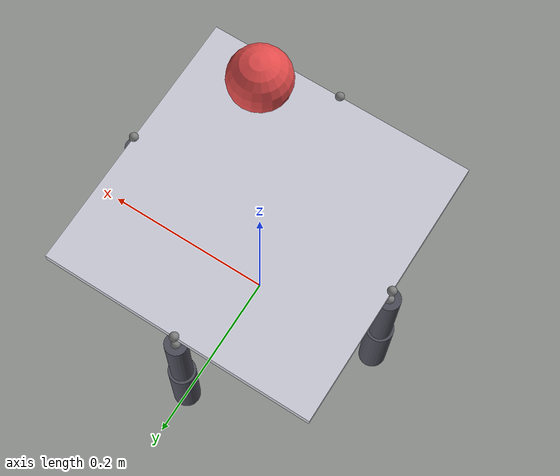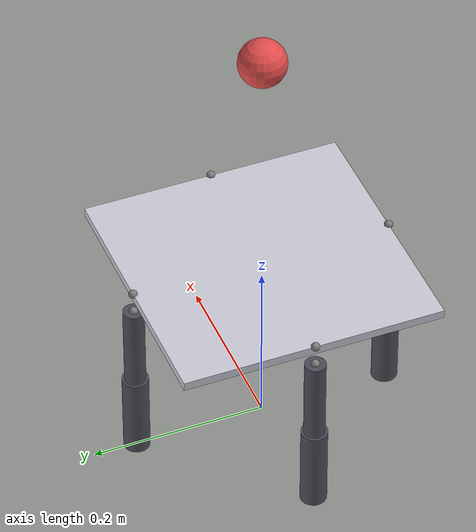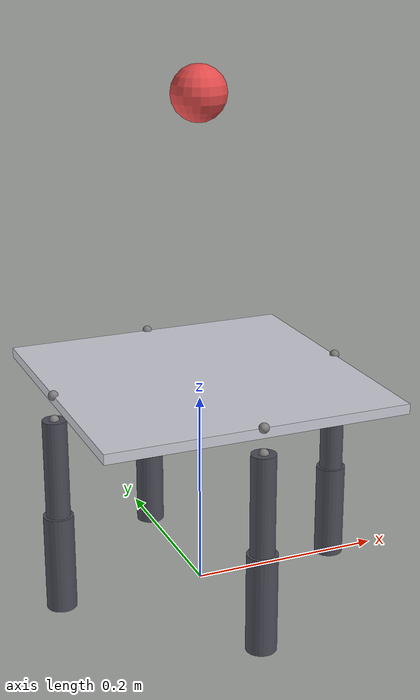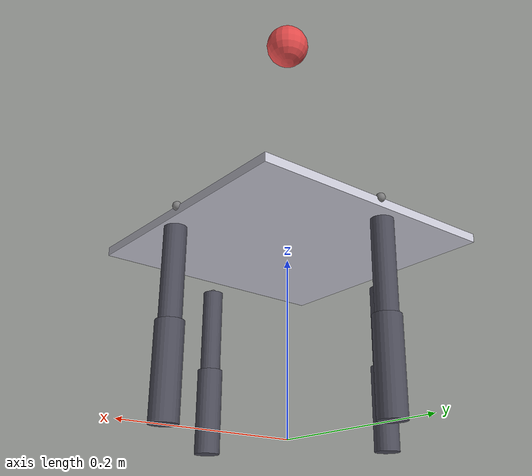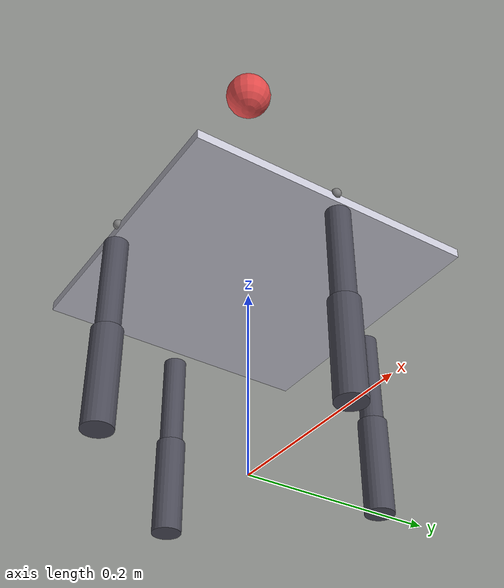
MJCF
<mujoco model="tilt_plate_4pillars_edges">
  <compiler angle="degree" inertiafromgeom="true"/>
  <option timestep="0.0001" gravity="0 0 -9.81" integrator="RK4"/>

  <default>
    <geom  condim="6" margin="0.001" solimp="0.9 0.95 0.001" solref="0.002 1"/>
    <default class="plate">
      <geom type="box" friction="0.8 0.003 0.001" solimp="0.99 0.99 0.001" solref="0.01 1.5" rgba="0.8 0.8 0.85 1"/>
    </default>
    <default class="ball">
      <geom type="sphere" friction="0.9 0.005 0.002" rgba="0.9 0.3 0.3 1"/>
    </default>
    <!-- 공통 기둥 설정 -->
    <default class="pillar">
      <joint type="slide" axis="0 0 1" damping="2" limited="true"/>
      <geom  type="cylinder" rgba="0.3 0.3 0.35 1"/>
    </default>
  </default>

  <!-- 고정 파라미터 -->
  <!-- plate: 0.30m 정사각, 두께 0.01m; ball: r=0.027m, m=0.01kg -->
  <!-- pillar stroke: 0.00 ~ 0.12m (gear로 0~1 입력에 매핑) -->
  <size nuserdata="0" nuser_jnt="0" nuser_geom="0" nuser_body="0"/>

  <worldbody>
    <!-- 판을 공중에 띄워 시작: z0 = 0.22 (기둥 base 0.10 + stroke/2 0.06 + 여유) -->
    <body name="plate" pos="0 0 0.22">
      <freejoint name="plate_free"/>
      <geom name="plate_geom" class="plate" size="0.15 0.15 0.005" mass="1.0"/>

      <!-- 변 중앙 사이트 (상면 z=+두께) -->
      <site name="edge_n" pos=" 0.000  0.150  0.005" size="0.005"/>
      <site name="edge_s" pos=" 0.000 -0.150  0.005" size="0.005"/>
      <site name="edge_e" pos=" 0.150  0.000  0.005" size="0.005"/>
      <site name="edge_w" pos="-0.150  0.000  0.005" size="0.005"/>
    </body>

    <!-- 공: 판 위에 살짝 띄워 시작 -->
    <body name="ball" pos="0 0 0.5">
      <freejoint name="ball_free"/>
      <geom name="ball_geom" class="ball" size="0.027" mass="0.01"/>
    </body>

    <!-- 4개 기둥: 네 변의 중앙 아래 -->
    <body name="pillar_n_base" pos="0.000 0.150 0.00">
      <!-- 시각화: 바닥 실린더(고정) -->
      <geom name="pillar_n_base_geom" class="pillar" size="0.015 0.10" fromto="0 0 0  0 0 0.10"/>
      <!-- 슬라이더(상단) 시작 높이 0.10 -->
      <body name="pillar_n_slider" pos="0 0 0.10">
        <joint name="j_n" class="pillar" range="0.00 0.12"/>
        <geom  name="pillar_n_top_geom" class="pillar" size="0.012 0.10" fromto="0 0 0  0 0 0.10"/>
        <site  name="pillar_n_top" pos="0 0 0.10" size="0.005"/>
      </body>
    </body>

    <body name="pillar_s_base" pos="0.000 -0.150 0.00">
      <geom name="pillar_s_base_geom" class="pillar" size="0.015 0.10" fromto="0 0 0  0 0 0.10"/>
      <body name="pillar_s_slider" pos="0 0 0.10">
        <joint name="j_s" class="pillar" range="0.00 0.12"/>
        <geom  name="pillar_s_top_geom" class="pillar" size="0.012 0.10" fromto="0 0 0  0 0 0.10"/>
        <site  name="pillar_s_top" pos="0 0 0.10" size="0.005"/>
      </body>
    </body>

    <body name="pillar_e_base" pos="0.150 0.000 0.00">
      <geom name="pillar_e_base_geom" class="pillar" size="0.015 0.10" fromto="0 0 0  0 0 0.10"/>
      <body name="pillar_e_slider" pos="0 0 0.10">
        <joint name="j_e" class="pillar" range="0.00 0.12"/>
        <geom  name="pillar_e_top_geom" class="pillar" size="0.012 0.10" fromto="0 0 0  0 0 0.10"/>
        <site  name="pillar_e_top" pos="0 0 0.10" size="0.005"/>
      </body>
    </body>

    <body name="pillar_w_base" pos="-0.150 0.000 0.00">
      <geom name="pillar_w_base_geom" class="pillar" size="0.015 0.10" fromto="0 0 0  0 0 0.10"/>
      <body name="pillar_w_slider" pos="0 0 0.10">
        <joint name="j_w" class="pillar" range="0.00 0.12"/>
        <geom  name="pillar_w_top_geom" class="pillar" size="0.012 0.10" fromto="0 0 0  0 0 0.10"/>
        <site  name="pillar_w_top" pos="0 0 0.10" size="0.005"/>
      </body>
    </body>
  </worldbody>

  <!-- 판 변 중앙 ↔ 각 기둥 상단 연결 (사이트-사이트) -->
  <equality>
    <connect site1="edge_n" site2="pillar_n_top"/>
    <connect site1="edge_s" site2="pillar_s_top"/>
    <connect site1="edge_e" site2="pillar_e_top"/>
    <connect site1="edge_w" site2="pillar_w_top"/>
  </equality>

  <actuator>
    <!-- u=0 → 최소길이(수축), u=1 → 최대길이(신장); gear=0.12로 0~1을 0~0.12m로 매핑 -->
    <position name="a_n" joint="j_n" kp="800" ctrlrange="0 1" gear="0.12"/>
    <position name="a_s" joint="j_s" kp="800" ctrlrange="0 1" gear="0.12"/>
    <position name="a_e" joint="j_e" kp="800" ctrlrange="0 1" gear="0.12"/>
    <position name="a_w" joint="j_w" kp="800" ctrlrange="0 1" gear="0.12"/>
  </actuator>
</mujoco>
